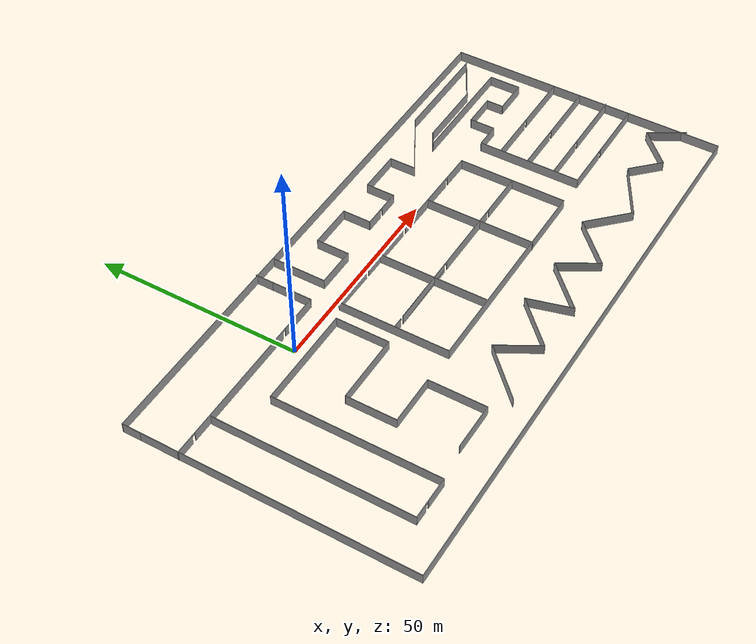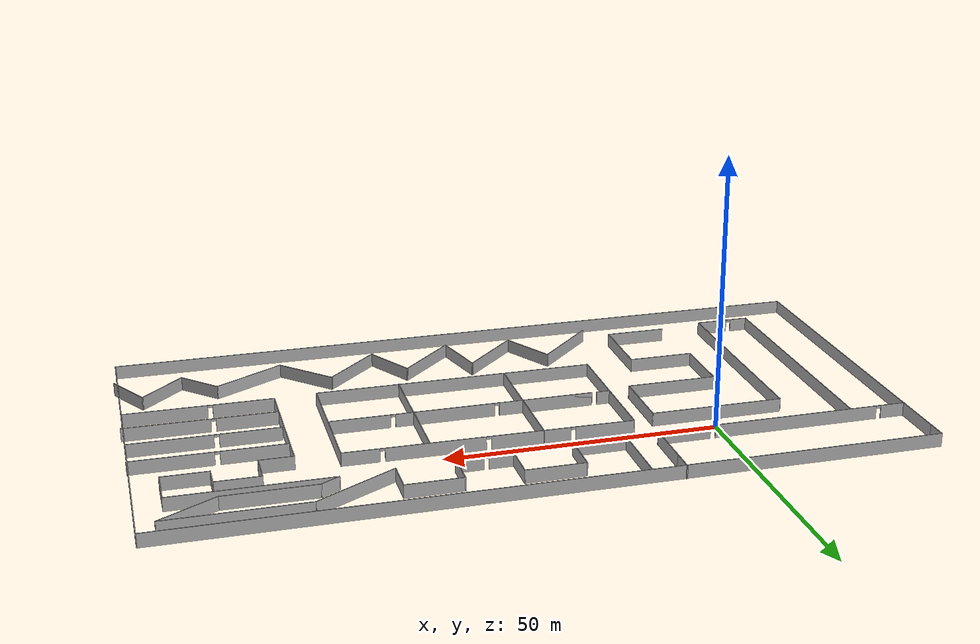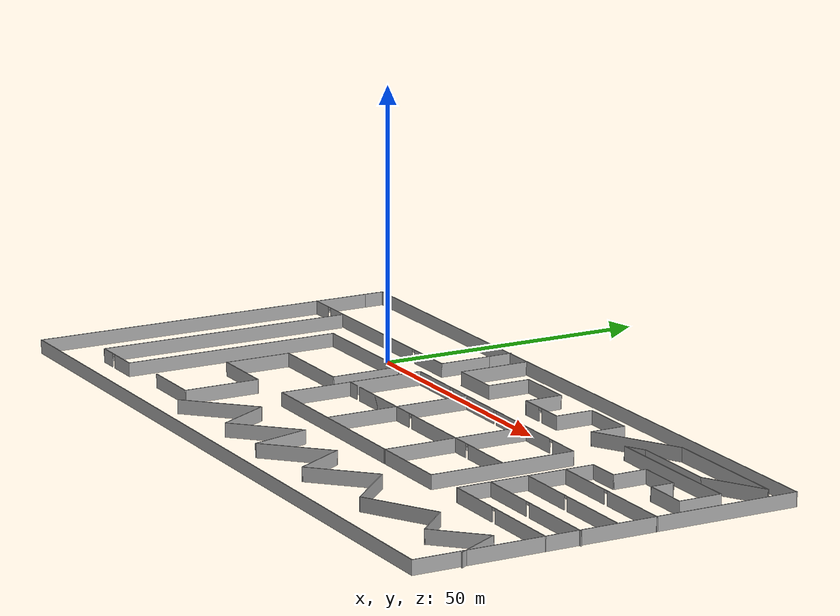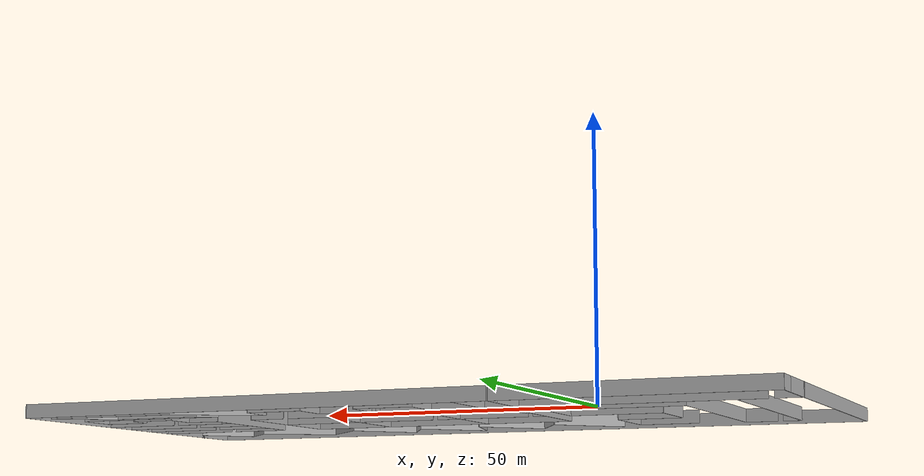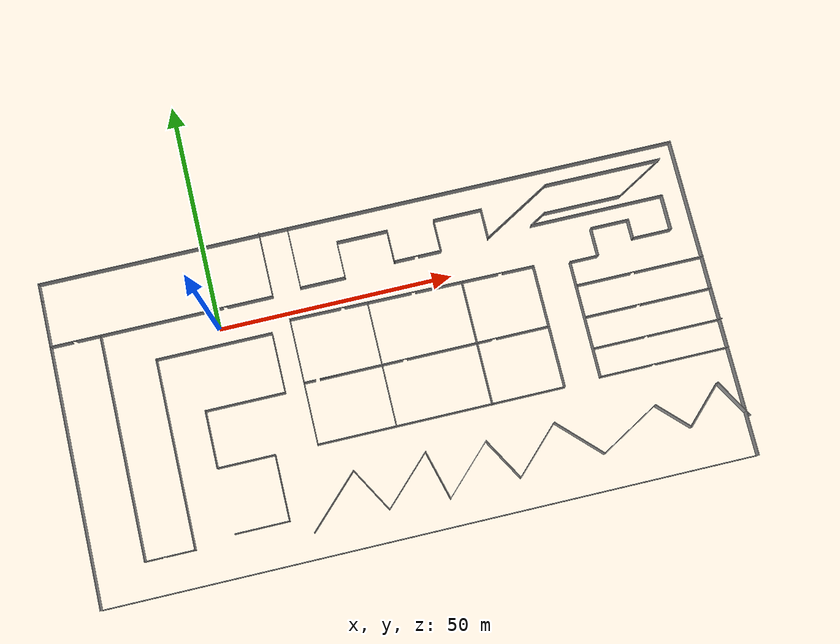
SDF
<?xml version='1.0'?>
<sdf version='1.6'>
  <model name='LS401big'>
    <pose frame=''>33.9459 -16.6165 0 0 -0 0</pose>
    <link name='Wall_0'>
      <collision name='Wall_0_Collision'>
        <geometry>
          <box>
            <size>65.25 0.15 2.5</size>
          </box>
        </geometry>
        <pose frame=''>0 0 1.25 0 -0 0</pose>
      </collision>
      <visual name='Wall_0_Visual'>
        <pose frame=''>0 0 1.25 0 -0 0</pose>
        <geometry>
          <box>
            <size>65.25 0.15 2.5</size>
          </box>
        </geometry>
        <material>
          <script>
            <uri>file://media/materials/scripts/gazebo.material</uri>
            <name>Gazebo/Grey</name>
          </script>
          <ambient>1 1 1 1</ambient>
        </material>
      </visual>
      <pose frame=''>-68.8085 -2.01776 0 0 0 -1.5708</pose>
    </link>
    <link name='Wall_1'>
      <collision name='Wall_1_Collision'>
        <geometry>
          <box>
            <size>137.25 0.15 2.5</size>
          </box>
        </geometry>
        <pose frame=''>0 0 1.25 0 -0 0</pose>
      </collision>
      <visual name='Wall_1_Visual'>
        <pose frame=''>0 0 1.25 0 -0 0</pose>
        <geometry>
          <box>
            <size>137.25 0.15 2.5</size>
          </box>
        </geometry>
        <material>
          <script>
            <uri>file://media/materials/scripts/gazebo.material</uri>
            <name>Gazebo/Grey</name>
          </script>
          <ambient>1 1 1 1</ambient>
        </material>
      </visual>
      <pose frame=''>-0.258518 -34.5678 0 0 -0 0</pose>
    </link>
    <link name='Wall_10'>
      <collision name='Wall_10_Collision'>
        <geometry>
          <box>
            <size>27 0.15 2.5</size>
          </box>
        </geometry>
        <pose frame=''>0 0 1.25 0 -0 0</pose>
      </collision>
      <visual name='Wall_10_Visual'>
        <pose frame=''>0 0 1.25 0 -0 0</pose>
        <geometry>
          <box>
            <size>27 0.15 2.5</size>
          </box>
        </geometry>
        <material>
          <script>
            <uri>file://media/materials/scripts/gazebo.material</uri>
            <name>Gazebo/Grey</name>
          </script>
          <ambient>1 1 1 1</ambient>
        </material>
      </visual>
      <pose frame=''>-19.1213 1.56513 0 0 0 -1.5708</pose>
    </link>
    <link name='Wall_11'>
      <collision name='Wall_11_Collision'>
        <geometry>
          <box>
            <size>52.5 0.15 2.5</size>
          </box>
        </geometry>
        <pose frame=''>0 0 1.25 0 -0 0</pose>
      </collision>
      <visual name='Wall_11_Visual'>
        <pose frame=''>0 0 1.25 0 -0 0</pose>
        <geometry>
          <box>
            <size>52.5 0.15 2.5</size>
          </box>
        </geometry>
        <material>
          <script>
            <uri>file://media/materials/scripts/gazebo.material</uri>
            <name>Gazebo/Grey</name>
          </script>
          <ambient>1 1 1 1</ambient>
        </material>
      </visual>
      <pose frame=''>7.05367 -11.8599 0 0 -0 0</pose>
    </link>
    <link name='Wall_12'>
      <collision name='Wall_12_Collision'>
        <geometry>
          <box>
            <size>26.5 0.15 2.5</size>
          </box>
        </geometry>
        <pose frame=''>0 0 1.25 0 -0 0</pose>
      </collision>
      <visual name='Wall_12_Visual'>
        <pose frame=''>0 0 1.25 0 -0 0</pose>
        <geometry>
          <box>
            <size>26.5 0.15 2.5</size>
          </box>
        </geometry>
        <material>
          <script>
            <uri>file://media/materials/scripts/gazebo.material</uri>
            <name>Gazebo/Grey</name>
          </script>
          <ambient>1 1 1 1</ambient>
        </material>
      </visual>
      <pose frame=''>33.2287 1.31513 0 0 -0 1.5708</pose>
    </link>
    <link name='Wall_13'>
      <pose frame=''>7.05367 14.7401 0 0 -0 3.13204</pose>
      <visual name='Wall_13_Visual_0'>
        <pose frame=''>-22.861 0 1.25 0 -0 0</pose>
        <geometry>
          <box>
            <size>6.78036 0.15 2.5</size>
          </box>
        </geometry>
        <material>
          <script>
            <uri>file://media/materials/scripts/gazebo.material</uri>
            <name>Gazebo/Grey</name>
          </script>
          <ambient>1 1 1 1</ambient>
        </material>
      </visual>
      <collision name='Wall_13_Collision_0'>
        <geometry>
          <box>
            <size>6.78036 0.15 2.5</size>
          </box>
        </geometry>
        <pose frame=''>-22.861 0 1.25 0 -0 0</pose>
      </collision>
      <visual name='Wall_13_Visual_1'>
        <pose frame=''>-9.6772 0 1.25 0 -0 0</pose>
        <geometry>
          <box>
            <size>17.7873 0.15 2.5</size>
          </box>
        </geometry>
        <material>
          <script>
            <uri>file://media/materials/scripts/gazebo.material</uri>
            <name>Gazebo/Grey</name>
          </script>
          <ambient>1 1 1 1</ambient>
        </material>
      </visual>
      <collision name='Wall_13_Collision_1'>
        <geometry>
          <box>
            <size>17.7873 0.15 2.5</size>
          </box>
        </geometry>
        <pose frame=''>-9.6772 0 1.25 0 -0 0</pose>
      </collision>
      <visual name='Wall_13_Visual_2'>
        <pose frame=''>7.27817 0 1.25 0 -0 0</pose>
        <geometry>
          <box>
            <size>14.3235 0.15 2.5</size>
          </box>
        </geometry>
        <material>
          <script>
            <uri>file://media/materials/scripts/gazebo.material</uri>
            <name>Gazebo/Grey</name>
          </script>
          <ambient>1 1 1 1</ambient>
        </material>
      </visual>
      <collision name='Wall_13_Collision_2'>
        <geometry>
          <box>
            <size>14.3235 0.15 2.5</size>
          </box>
        </geometry>
        <pose frame=''>7.27817 0 1.25 0 -0 0</pose>
      </collision>
      <visual name='Wall_13_Visual_3'>
        <pose frame=''>20.7956 0 1.25 0 -0 0</pose>
        <geometry>
          <box>
            <size>10.9113 0.15 2.5</size>
          </box>
        </geometry>
        <material>
          <script>
            <uri>file://media/materials/scripts/gazebo.material</uri>
            <name>Gazebo/Grey</name>
          </script>
          <ambient>1 1 1 1</ambient>
        </material>
      </visual>
      <collision name='Wall_13_Collision_3'>
        <geometry>
          <box>
            <size>10.9113 0.15 2.5</size>
          </box>
        </geometry>
        <pose frame=''>20.7956 0 1.25 0 -0 0</pose>
      </collision>
      <visual name='Wall_13_Visual_4'>
        <pose frame=''>-19.0208 0 2.25 0 -0 0</pose>
        <geometry>
          <box>
            <size>0.9 0.15 0.5</size>
          </box>
        </geometry>
        <material>
          <script>
            <uri>file://media/materials/scripts/gazebo.material</uri>
            <name>Gazebo/Grey</name>
          </script>
          <ambient>1 1 1 1</ambient>
        </material>
      </visual>
      <collision name='Wall_13_Collision_4'>
        <geometry>
          <box>
            <size>0.9 0.15 0.5</size>
          </box>
        </geometry>
        <pose frame=''>-19.0208 0 2.25 0 -0 0</pose>
      </collision>
      <visual name='Wall_13_Visual_5'>
        <pose frame=''>-0.333565 0 2.25 0 -0 0</pose>
        <geometry>
          <box>
            <size>0.9 0.15 0.5</size>
          </box>
        </geometry>
        <material>
          <script>
            <uri>file://media/materials/scripts/gazebo.material</uri>
            <name>Gazebo/Grey</name>
          </script>
          <ambient>1 1 1 1</ambient>
        </material>
      </visual>
      <collision name='Wall_13_Collision_5'>
        <geometry>
          <box>
            <size>0.9 0.15 0.5</size>
          </box>
        </geometry>
        <pose frame=''>-0.333565 0 2.25 0 -0 0</pose>
      </collision>
      <visual name='Wall_13_Visual_6'>
        <pose frame=''>14.8899 0 2.25 0 -0 0</pose>
        <geometry>
          <box>
            <size>0.9 0.15 0.5</size>
          </box>
        </geometry>
        <material>
          <script>
            <uri>file://media/materials/scripts/gazebo.material</uri>
            <name>Gazebo/Grey</name>
          </script>
          <ambient>1 1 1 1</ambient>
        </material>
      </visual>
      <collision name='Wall_13_Collision_6'>
        <geometry>
          <box>
            <size>0.9 0.15 0.5</size>
          </box>
        </geometry>
        <pose frame=''>14.8899 0 2.25 0 -0 0</pose>
      </collision>
    </link>
    <link name='Wall_15'>
      <collision name='Wall_15_Collision'>
        <geometry>
          <box>
            <size>26.75 0.15 2.5</size>
          </box>
        </geometry>
        <pose frame=''>0 0 1.25 0 -0 0</pose>
      </collision>
      <visual name='Wall_15_Visual'>
        <pose frame=''>0 0 1.25 0 -0 0</pose>
        <geometry>
          <box>
            <size>26.75 0.15 2.5</size>
          </box>
        </geometry>
        <material>
          <script>
            <uri>file://media/materials/scripts/gazebo.material</uri>
            <name>Gazebo/Grey</name>
          </script>
          <ambient>1 1 1 1</ambient>
        </material>
      </visual>
      <pose frame=''>-2.51414 1.58029 0 0 0 -1.5708</pose>
    </link>
    <link name='Wall_17'>
      <collision name='Wall_17_Collision'>
        <geometry>
          <box>
            <size>26.75 0.15 2.5</size>
          </box>
        </geometry>
        <pose frame=''>0 0 1.25 0 -0 0</pose>
      </collision>
      <visual name='Wall_17_Visual'>
        <pose frame=''>0 0 1.25 0 -0 0</pose>
        <geometry>
          <box>
            <size>26.75 0.15 2.5</size>
          </box>
        </geometry>
        <material>
          <script>
            <uri>file://media/materials/scripts/gazebo.material</uri>
            <name>Gazebo/Grey</name>
          </script>
          <ambient>1 1 1 1</ambient>
        </material>
      </visual>
      <pose frame=''>17.7816 1.33278 0 0 0 -1.5708</pose>
    </link>
    <link name='Wall_19'>
      <pose frame=''>6.95275 1.26729 0 0 -0 0</pose>
      <visual name='Wall_19_Visual_0'>
        <pose frame=''>-24.8554 0 1.25 0 -0 0</pose>
        <geometry>
          <box>
            <size>2.53914 0.15 2.5</size>
          </box>
        </geometry>
        <material>
          <script>
            <uri>file://media/materials/scripts/gazebo.material</uri>
            <name>Gazebo/Grey</name>
          </script>
          <ambient>1 1 1 1</ambient>
        </material>
      </visual>
      <collision name='Wall_19_Collision_0'>
        <geometry>
          <box>
            <size>2.53914 0.15 2.5</size>
          </box>
        </geometry>
        <pose frame=''>-24.8554 0 1.25 0 -0 0</pose>
      </collision>
      <visual name='Wall_19_Visual_1'>
        <pose frame=''>-13.8521 0 1.25 0 -0 0</pose>
        <geometry>
          <box>
            <size>17.6675 0.15 2.5</size>
          </box>
        </geometry>
        <material>
          <script>
            <uri>file://media/materials/scripts/gazebo.material</uri>
            <name>Gazebo/Grey</name>
          </script>
          <ambient>1 1 1 1</ambient>
        </material>
      </visual>
      <collision name='Wall_19_Collision_1'>
        <geometry>
          <box>
            <size>17.6675 0.15 2.5</size>
          </box>
        </geometry>
        <pose frame=''>-13.8521 0 1.25 0 -0 0</pose>
      </collision>
      <visual name='Wall_19_Visual_2'>
        <pose frame=''>-13.8022 0 1.25 0 -0 0</pose>
        <geometry>
          <box>
            <size>17.5676 0.15 2.5</size>
          </box>
        </geometry>
        <material>
          <script>
            <uri>file://media/materials/scripts/gazebo.material</uri>
            <name>Gazebo/Grey</name>
          </script>
          <ambient>1 1 1 1</ambient>
        </material>
      </visual>
      <collision name='Wall_19_Collision_2'>
        <geometry>
          <box>
            <size>17.5676 0.15 2.5</size>
          </box>
        </geometry>
        <pose frame=''>-13.8022 0 1.25 0 -0 0</pose>
      </collision>
      <visual name='Wall_19_Visual_3'>
        <pose frame=''>5.00668 0 1.25 0 -0 0</pose>
        <geometry>
          <box>
            <size>18.2501 0.15 2.5</size>
          </box>
        </geometry>
        <material>
          <script>
            <uri>file://media/materials/scripts/gazebo.material</uri>
            <name>Gazebo/Grey</name>
          </script>
          <ambient>1 1 1 1</ambient>
        </material>
      </visual>
      <collision name='Wall_19_Collision_3'>
        <geometry>
          <box>
            <size>18.2501 0.15 2.5</size>
          </box>
        </geometry>
        <pose frame=''>5.00668 0 1.25 0 -0 0</pose>
      </collision>
      <visual name='Wall_19_Visual_4'>
        <pose frame=''>20.5784 0 1.25 0 -0 0</pose>
        <geometry>
          <box>
            <size>11.0933 0.15 2.5</size>
          </box>
        </geometry>
        <material>
          <script>
            <uri>file://media/materials/scripts/gazebo.material</uri>
            <name>Gazebo/Grey</name>
          </script>
          <ambient>1 1 1 1</ambient>
        </material>
      </visual>
      <collision name='Wall_19_Collision_4'>
        <geometry>
          <box>
            <size>11.0933 0.15 2.5</size>
          </box>
        </geometry>
        <pose frame=''>20.5784 0 1.25 0 -0 0</pose>
      </collision>
      <visual name='Wall_19_Visual_5'>
        <pose frame=''>-23.5359 0 2.25 0 -0 0</pose>
        <geometry>
          <box>
            <size>0.099876 0.15 0.5</size>
          </box>
        </geometry>
        <material>
          <script>
            <uri>file://media/materials/scripts/gazebo.material</uri>
            <name>Gazebo/Grey</name>
          </script>
          <ambient>1 1 1 1</ambient>
        </material>
      </visual>
      <collision name='Wall_19_Collision_5'>
        <geometry>
          <box>
            <size>0.099876 0.15 0.5</size>
          </box>
        </geometry>
        <pose frame=''>-23.5359 0 2.25 0 -0 0</pose>
      </collision>
      <visual name='Wall_19_Visual_6'>
        <pose frame=''>-4.56839 0 2.25 0 -0 0</pose>
        <geometry>
          <box>
            <size>0.9 0.15 0.5</size>
          </box>
        </geometry>
        <material>
          <script>
            <uri>file://media/materials/scripts/gazebo.material</uri>
            <name>Gazebo/Grey</name>
          </script>
          <ambient>1 1 1 1</ambient>
        </material>
      </visual>
      <collision name='Wall_19_Collision_6'>
        <geometry>
          <box>
            <size>0.9 0.15 0.5</size>
          </box>
        </geometry>
        <pose frame=''>-4.56839 0 2.25 0 -0 0</pose>
      </collision>
      <visual name='Wall_19_Visual_7'>
        <pose frame=''>-4.56839 0 2.25 0 -0 0</pose>
        <geometry>
          <box>
            <size>0.9 0.15 0.5</size>
          </box>
        </geometry>
        <material>
          <script>
            <uri>file://media/materials/scripts/gazebo.material</uri>
            <name>Gazebo/Grey</name>
          </script>
          <ambient>1 1 1 1</ambient>
        </material>
      </visual>
      <collision name='Wall_19_Collision_7'>
        <geometry>
          <box>
            <size>0.9 0.15 0.5</size>
          </box>
        </geometry>
        <pose frame=''>-4.56839 0 2.25 0 -0 0</pose>
      </collision>
      <visual name='Wall_19_Visual_8'>
        <pose frame=''>14.5817 0 2.25 0 -0 0</pose>
        <geometry>
          <box>
            <size>0.9 0.15 0.5</size>
          </box>
        </geometry>
        <material>
          <script>
            <uri>file://media/materials/scripts/gazebo.material</uri>
            <name>Gazebo/Grey</name>
          </script>
          <ambient>1 1 1 1</ambient>
        </material>
      </visual>
      <collision name='Wall_19_Collision_8'>
        <geometry>
          <box>
            <size>0.9 0.15 0.5</size>
          </box>
        </geometry>
        <pose frame=''>14.5817 0 2.25 0 -0 0</pose>
      </collision>
    </link>
    <link name='Wall_2'>
      <collision name='Wall_2_Collision'>
        <geometry>
          <box>
            <size>69 0.15 2.5</size>
          </box>
        </geometry>
        <pose frame=''>0 0 1.25 0 -0 0</pose>
      </collision>
      <visual name='Wall_2_Visual'>
        <pose frame=''>0 0 1.25 0 -0 0</pose>
        <geometry>
          <box>
            <size>69 0.15 2.5</size>
          </box>
        </geometry>
        <material>
          <script>
            <uri>file://media/materials/scripts/gazebo.material</uri>
            <name>Gazebo/Grey</name>
          </script>
          <ambient>1 1 1 1</ambient>
        </material>
      </visual>
      <pose frame=''>68.2915 -0.14276 0 0 -0 1.5708</pose>
    </link>
    <link name='Wall_21'>
      <collision name='Wall_21_Collision'>
        <geometry>
          <box>
            <size>47.5 0.15 2.5</size>
          </box>
        </geometry>
        <pose frame=''>0 0 1.25 0 -0 0</pose>
      </collision>
      <visual name='Wall_21_Visual'>
        <pose frame=''>0 0 1.25 0 -0 0</pose>
        <geometry>
          <box>
            <size>47.5 0.15 2.5</size>
          </box>
        </geometry>
        <material>
          <script>
            <uri>file://media/materials/scripts/gazebo.material</uri>
            <name>Gazebo/Grey</name>
          </script>
          <ambient>1 1 1 1</ambient>
        </material>
      </visual>
      <pose frame=''>-58.2927 -3.4002 0 0 0 -1.5708</pose>
    </link>
    <link name='Wall_22'>
      <pose frame=''>-53.1177 -27.0752 0 0 -0 0</pose>
      <visual name='Wall_22_Visual_0'>
        <pose frame=''>-3.50436 0 1.25 0 -0 0</pose>
        <geometry>
          <box>
            <size>3.49127 0.15 2.5</size>
          </box>
        </geometry>
        <material>
          <script>
            <uri>file://media/materials/scripts/gazebo.material</uri>
            <name>Gazebo/Grey</name>
          </script>
          <ambient>1 1 1 1</ambient>
        </material>
      </visual>
      <collision name='Wall_22_Collision_0'>
        <geometry>
          <box>
            <size>3.49127 0.15 2.5</size>
          </box>
        </geometry>
        <pose frame=''>-3.50436 0 1.25 0 -0 0</pose>
      </collision>
      <visual name='Wall_22_Visual_1'>
        <pose frame=''>2.19563 0 1.25 0 -0 0</pose>
        <geometry>
          <box>
            <size>6.10873 0.15 2.5</size>
          </box>
        </geometry>
        <material>
          <script>
            <uri>file://media/materials/scripts/gazebo.material</uri>
            <name>Gazebo/Grey</name>
          </script>
          <ambient>1 1 1 1</ambient>
        </material>
      </visual>
      <collision name='Wall_22_Collision_1'>
        <geometry>
          <box>
            <size>6.10873 0.15 2.5</size>
          </box>
        </geometry>
        <pose frame=''>2.19563 0 1.25 0 -0 0</pose>
      </collision>
      <visual name='Wall_22_Visual_2'>
        <pose frame=''>-1.30873 0 2.25 0 -0 0</pose>
        <geometry>
          <box>
            <size>0.9 0.15 0.5</size>
          </box>
        </geometry>
        <material>
          <script>
            <uri>file://media/materials/scripts/gazebo.material</uri>
            <name>Gazebo/Grey</name>
          </script>
          <ambient>1 1 1 1</ambient>
        </material>
      </visual>
      <collision name='Wall_22_Collision_2'>
        <geometry>
          <box>
            <size>0.9 0.15 0.5</size>
          </box>
        </geometry>
        <pose frame=''>-1.30873 0 2.25 0 -0 0</pose>
      </collision>
    </link>
    <link name='Wall_23'>
      <collision name='Wall_23_Collision'>
        <geometry>
          <box>
            <size>40.25 0.15 2.5</size>
          </box>
        </geometry>
        <pose frame=''>0 0 1.25 0 -0 0</pose>
      </collision>
      <visual name='Wall_23_Visual'>
        <pose frame=''>0 0 1.25 0 -0 0</pose>
        <geometry>
          <box>
            <size>40.25 0.15 2.5</size>
          </box>
        </geometry>
        <material>
          <script>
            <uri>file://media/materials/scripts/gazebo.material</uri>
            <name>Gazebo/Grey</name>
          </script>
          <ambient>1 1 1 1</ambient>
        </material>
      </visual>
      <pose frame=''>-47.9427 -7.0252 0 0 -0 1.5708</pose>
    </link>
    <link name='Wall_24'>
      <collision name='Wall_24_Collision'>
        <geometry>
          <box>
            <size>24.75 0.15 2.5</size>
          </box>
        </geometry>
        <pose frame=''>0 0 1.25 0 -0 0</pose>
      </collision>
      <visual name='Wall_24_Visual'>
        <pose frame=''>0 0 1.25 0 -0 0</pose>
        <geometry>
          <box>
            <size>24.75 0.15 2.5</size>
          </box>
        </geometry>
        <material>
          <script>
            <uri>file://media/materials/scripts/gazebo.material</uri>
            <name>Gazebo/Grey</name>
          </script>
          <ambient>1 1 1 1</ambient>
        </material>
      </visual>
      <pose frame=''>-35.6427 13.0248 0 0 -0 0</pose>
    </link>
    <link name='Wall_25'>
      <collision name='Wall_25_Collision'>
        <geometry>
          <box>
            <size>13 0.15 2.5</size>
          </box>
        </geometry>
        <pose frame=''>0 0 1.25 0 -0 0</pose>
      </collision>
      <visual name='Wall_25_Visual'>
        <pose frame=''>0 0 1.25 0 -0 0</pose>
        <geometry>
          <box>
            <size>13 0.15 2.5</size>
          </box>
        </geometry>
        <material>
          <script>
            <uri>file://media/materials/scripts/gazebo.material</uri>
            <name>Gazebo/Grey</name>
          </script>
          <ambient>1 1 1 1</ambient>
        </material>
      </visual>
      <pose frame=''>-23.3427 6.5998 0 0 0 -1.5708</pose>
    </link>
    <link name='Wall_26'>
      <collision name='Wall_26_Collision'>
        <geometry>
          <box>
            <size>17 0.15 2.5</size>
          </box>
        </geometry>
        <pose frame=''>0 0 1.25 0 -0 0</pose>
      </collision>
      <visual name='Wall_26_Visual'>
        <pose frame=''>0 0 1.25 0 -0 0</pose>
        <geometry>
          <box>
            <size>17 0.15 2.5</size>
          </box>
        </geometry>
        <material>
          <script>
            <uri>file://media/materials/scripts/gazebo.material</uri>
            <name>Gazebo/Grey</name>
          </script>
          <ambient>1 1 1 1</ambient>
        </material>
      </visual>
      <pose frame=''>-31.7677 0.174802 0 0 -0 3.14159</pose>
    </link>
    <link name='Wall_27'>
      <collision name='Wall_27_Collision'>
        <geometry>
          <box>
            <size>12.25 0.15 2.5</size>
          </box>
        </geometry>
        <pose frame=''>0 0 1.25 0 -0 0</pose>
      </collision>
      <visual name='Wall_27_Visual'>
        <pose frame=''>0 0 1.25 0 -0 0</pose>
        <geometry>
          <box>
            <size>12.25 0.15 2.5</size>
          </box>
        </geometry>
        <material>
          <script>
            <uri>file://media/materials/scripts/gazebo.material</uri>
            <name>Gazebo/Grey</name>
          </script>
          <ambient>1 1 1 1</ambient>
        </material>
      </visual>
      <pose frame=''>-40.1927 -5.8752 0 0 0 -1.5708</pose>
    </link>
    <link name='Wall_28'>
      <collision name='Wall_28_Collision'>
        <geometry>
          <box>
            <size>12.25 0.15 2.5</size>
          </box>
        </geometry>
        <pose frame=''>0 0 1.25 0 -0 0</pose>
      </collision>
      <visual name='Wall_28_Visual'>
        <pose frame=''>0 0 1.25 0 -0 0</pose>
        <geometry>
          <box>
            <size>12.25 0.15 2.5</size>
          </box>
        </geometry>
        <material>
          <script>
            <uri>file://media/materials/scripts/gazebo.material</uri>
            <name>Gazebo/Grey</name>
          </script>
          <ambient>1 1 1 1</ambient>
        </material>
      </visual>
      <pose frame=''>-34.1427 -11.9252 0 0 -0 0</pose>
    </link>
    <link name='Wall_29'>
      <collision name='Wall_29_Collision'>
        <geometry>
          <box>
            <size>14 0.15 2.5</size>
          </box>
        </geometry>
        <pose frame=''>0 0 1.25 0 -0 0</pose>
      </collision>
      <visual name='Wall_29_Visual'>
        <pose frame=''>0 0 1.25 0 -0 0</pose>
        <geometry>
          <box>
            <size>14 0.15 2.5</size>
          </box>
        </geometry>
        <material>
          <script>
            <uri>file://media/materials/scripts/gazebo.material</uri>
            <name>Gazebo/Grey</name>
          </script>
          <ambient>1 1 1 1</ambient>
        </material>
      </visual>
      <pose frame=''>-28.0927 -18.8502 0 0 0 -1.5708</pose>
    </link>
    <link name='Wall_3'>
      <collision name='Wall_3_Collision'>
        <geometry>
          <box>
            <size>137.25 0.15 2.5</size>
          </box>
        </geometry>
        <pose frame=''>0 0 1.25 0 -0 0</pose>
      </collision>
      <visual name='Wall_3_Visual'>
        <pose frame=''>0 0 1.25 0 -0 0</pose>
        <geometry>
          <box>
            <size>137.25 0.15 2.5</size>
          </box>
        </geometry>
        <material>
          <script>
            <uri>file://media/materials/scripts/gazebo.material</uri>
            <name>Gazebo/Grey</name>
          </script>
          <ambient>1 1 1 1</ambient>
        </material>
      </visual>
      <pose frame=''>-0.258518 34.2822 0 0 -0 3.14159</pose>
    </link>
    <link name='Wall_30'>
      <collision name='Wall_30_Collision'>
        <geometry>
          <box>
            <size>11.5 0.15 2.5</size>
          </box>
        </geometry>
        <pose frame=''>0 0 1.25 0 -0 0</pose>
      </collision>
      <visual name='Wall_30_Visual'>
        <pose frame=''>0 0 1.25 0 -0 0</pose>
        <geometry>
          <box>
            <size>11.5 0.15 2.5</size>
          </box>
        </geometry>
        <material>
          <script>
            <uri>file://media/materials/scripts/gazebo.material</uri>
            <name>Gazebo/Grey</name>
          </script>
          <ambient>1 1 1 1</ambient>
        </material>
      </visual>
      <pose frame=''>-33.7677 -25.7752 0 0 -0 3.14159</pose>
    </link>
    <link name='Wall_32'>
      <collision name='Wall_32_Collision'>
        <geometry>
          <box>
            <size>13 0.15 2.5</size>
          </box>
        </geometry>
        <pose frame=''>0 0 1.25 0 -0 0</pose>
      </collision>
      <visual name='Wall_32_Visual'>
        <pose frame=''>0 0 1.25 0 -0 0</pose>
        <geometry>
          <box>
            <size>13 0.15 2.5</size>
          </box>
        </geometry>
        <material>
          <script>
            <uri>file://media/materials/scripts/gazebo.material</uri>
            <name>Gazebo/Grey</name>
          </script>
          <ambient>1 1 1 1</ambient>
        </material>
      </visual>
      <pose frame=''>-15.4741 27.548 0 0 0 -1.5708</pose>
    </link>
    <link name='Wall_33'>
      <collision name='Wall_33_Collision'>
        <geometry>
          <box>
            <size>9.75 0.15 2.5</size>
          </box>
        </geometry>
        <pose frame=''>0 0 1.25 0 -0 0</pose>
      </collision>
      <visual name='Wall_33_Visual'>
        <pose frame=''>0 0 1.25 0 -0 0</pose>
        <geometry>
          <box>
            <size>9.75 0.15 2.5</size>
          </box>
        </geometry>
        <material>
          <script>
            <uri>file://media/materials/scripts/gazebo.material</uri>
            <name>Gazebo/Grey</name>
          </script>
          <ambient>1 1 1 1</ambient>
        </material>
      </visual>
      <pose frame=''>-10.6741 21.123 0 0 -0 0</pose>
    </link>
    <link name='Wall_34'>
      <collision name='Wall_34_Collision'>
        <geometry>
          <box>
            <size>8 0.15 2.5</size>
          </box>
        </geometry>
        <pose frame=''>0 0 1.25 0 -0 0</pose>
      </collision>
      <visual name='Wall_34_Visual'>
        <pose frame=''>0 0 1.25 0 -0 0</pose>
        <geometry>
          <box>
            <size>8 0.15 2.5</size>
          </box>
        </geometry>
        <material>
          <script>
            <uri>file://media/materials/scripts/gazebo.material</uri>
            <name>Gazebo/Grey</name>
          </script>
          <ambient>1 1 1 1</ambient>
        </material>
      </visual>
      <pose frame=''>-5.87405 25.048 0 0 -0 1.5708</pose>
    </link>
    <link name='Wall_35'>
      <collision name='Wall_35_Collision'>
        <geometry>
          <box>
            <size>11 0.15 2.5</size>
          </box>
        </geometry>
        <pose frame=''>0 0 1.25 0 -0 0</pose>
      </collision>
      <visual name='Wall_35_Visual'>
        <pose frame=''>0 0 1.25 0 -0 0</pose>
        <geometry>
          <box>
            <size>11 0.15 2.5</size>
          </box>
        </geometry>
        <material>
          <script>
            <uri>file://media/materials/scripts/gazebo.material</uri>
            <name>Gazebo/Grey</name>
          </script>
          <ambient>1 1 1 1</ambient>
        </material>
      </visual>
      <pose frame=''>-0.449051 28.973 0 0 -0 0</pose>
    </link>
    <link name='Wall_36'>
      <collision name='Wall_36_Collision'>
        <geometry>
          <box>
            <size>7 0.15 2.5</size>
          </box>
        </geometry>
        <pose frame=''>0 0 1.25 0 -0 0</pose>
      </collision>
      <visual name='Wall_36_Visual'>
        <pose frame=''>0 0 1.25 0 -0 0</pose>
        <geometry>
          <box>
            <size>7 0.15 2.5</size>
          </box>
        </geometry>
        <material>
          <script>
            <uri>file://media/materials/scripts/gazebo.material</uri>
            <name>Gazebo/Grey</name>
          </script>
          <ambient>1 1 1 1</ambient>
        </material>
      </visual>
      <pose frame=''>4.97595 25.548 0 0 0 -1.5708</pose>
    </link>
    <link name='Wall_37'>
      <pose frame=''>10.0259 22.123 0 0 -0 0</pose>
      <visual name='Wall_37_Visual_0'>
        <pose frame=''>-2.91875 0 1.25 0 -0 0</pose>
        <geometry>
          <box>
            <size>4.4125 0.15 2.5</size>
          </box>
        </geometry>
        <material>
          <script>
            <uri>file://media/materials/scripts/gazebo.material</uri>
            <name>Gazebo/Grey</name>
          </script>
          <ambient>1 1 1 1</ambient>
        </material>
      </visual>
      <collision name='Wall_37_Collision_0'>
        <geometry>
          <box>
            <size>4.4125 0.15 2.5</size>
          </box>
        </geometry>
        <pose frame=''>-2.91875 0 1.25 0 -0 0</pose>
      </collision>
      <visual name='Wall_37_Visual_1'>
        <pose frame=''>2.65625 0 1.25 0 -0 0</pose>
        <geometry>
          <box>
            <size>4.9375 0.15 2.5</size>
          </box>
        </geometry>
        <material>
          <script>
            <uri>file://media/materials/scripts/gazebo.material</uri>
            <name>Gazebo/Grey</name>
          </script>
          <ambient>1 1 1 1</ambient>
        </material>
      </visual>
      <collision name='Wall_37_Collision_1'>
        <geometry>
          <box>
            <size>4.9375 0.15 2.5</size>
          </box>
        </geometry>
        <pose frame=''>2.65625 0 1.25 0 -0 0</pose>
      </collision>
      <visual name='Wall_37_Visual_2'>
        <pose frame=''>-0.262497 0 2.25 0 -0 0</pose>
        <geometry>
          <box>
            <size>0.9 0.15 0.5</size>
          </box>
        </geometry>
        <material>
          <script>
            <uri>file://media/materials/scripts/gazebo.material</uri>
            <name>Gazebo/Grey</name>
          </script>
          <ambient>1 1 1 1</ambient>
        </material>
      </visual>
      <collision name='Wall_37_Collision_2'>
        <geometry>
          <box>
            <size>0.9 0.15 0.5</size>
          </box>
        </geometry>
        <pose frame=''>-0.262497 0 2.25 0 -0 0</pose>
      </collision>
    </link>
    <link name='Wall_38'>
      <collision name='Wall_38_Collision'>
        <geometry>
          <box>
            <size>7 0.15 2.5</size>
          </box>
        </geometry>
        <pose frame=''>0 0 1.25 0 -0 0</pose>
      </collision>
      <visual name='Wall_38_Visual'>
        <pose frame=''>0 0 1.25 0 -0 0</pose>
        <geometry>
          <box>
            <size>7 0.15 2.5</size>
          </box>
        </geometry>
        <material>
          <script>
            <uri>file://media/materials/scripts/gazebo.material</uri>
            <name>Gazebo/Grey</name>
          </script>
          <ambient>1 1 1 1</ambient>
        </material>
      </visual>
      <pose frame=''>15.0759 25.548 0 0 -0 1.5708</pose>
    </link>
    <link name='Wall_39'>
      <collision name='Wall_39_Collision'>
        <geometry>
          <box>
            <size>10.5 0.15 2.5</size>
          </box>
        </geometry>
        <pose frame=''>0 0 1.25 0 -0 0</pose>
      </collision>
      <visual name='Wall_39_Visual'>
        <pose frame=''>0 0 1.25 0 -0 0</pose>
        <geometry>
          <box>
            <size>10.5 0.15 2.5</size>
          </box>
        </geometry>
        <material>
          <script>
            <uri>file://media/materials/scripts/gazebo.material</uri>
            <name>Gazebo/Grey</name>
          </script>
          <ambient>1 1 1 1</ambient>
        </material>
      </visual>
      <pose frame=''>20.2509 28.973 0 0 -0 0</pose>
    </link>
    <link name='Wall_4'>
      <collision name='Wall_4_Collision'>
        <geometry>
          <box>
            <size>4.5 0.15 2.5</size>
          </box>
        </geometry>
        <pose frame=''>0 0 1.25 0 -0 0</pose>
      </collision>
      <visual name='Wall_4_Visual'>
        <pose frame=''>0 0 1.25 0 -0 0</pose>
        <geometry>
          <box>
            <size>4.5 0.15 2.5</size>
          </box>
        </geometry>
        <material>
          <script>
            <uri>file://media/materials/scripts/gazebo.material</uri>
            <name>Gazebo/Grey</name>
          </script>
          <ambient>1 1 1 1</ambient>
        </material>
      </visual>
      <pose frame=''>-68.8085 32.1072 0 0 0 -1.5708</pose>
    </link>
    <link name='Wall_40'>
      <collision name='Wall_40_Collision'>
        <geometry>
          <box>
            <size>6.5 0.15 2.5</size>
          </box>
        </geometry>
        <pose frame=''>0 0 1.25 0 -0 0</pose>
      </collision>
      <visual name='Wall_40_Visual'>
        <pose frame=''>0 0 1.25 0 -0 0</pose>
        <geometry>
          <box>
            <size>6.5 0.15 2.5</size>
          </box>
        </geometry>
        <material>
          <script>
            <uri>file://media/materials/scripts/gazebo.material</uri>
            <name>Gazebo/Grey</name>
          </script>
          <ambient>1 1 1 1</ambient>
        </material>
      </visual>
      <pose frame=''>25.4259 25.798 0 0 0 -1.5708</pose>
    </link>
    <link name='Wall_41'>
      <collision name='Wall_41_Collision'>
        <geometry>
          <box>
            <size>17 0.15 2.5</size>
          </box>
        </geometry>
        <pose frame=''>0 0 1.25 0 -0 0</pose>
      </collision>
      <visual name='Wall_41_Visual'>
        <pose frame=''>0 0 1.25 0 -0 0</pose>
        <geometry>
          <box>
            <size>17 0.15 2.5</size>
          </box>
        </geometry>
        <material>
          <script>
            <uri>file://media/materials/scripts/gazebo.material</uri>
            <name>Gazebo/Grey</name>
          </script>
          <ambient>1 1 1 1</ambient>
        </material>
      </visual>
      <pose frame=''>32.7222 26.8355 0 0 -0 0.523599</pose>
    </link>
    <link name='Wall_42'>
      <collision name='Wall_42_Collision'>
        <geometry>
          <box>
            <size>25.25 0.15 2.5</size>
          </box>
        </geometry>
        <pose frame=''>0 0 1.25 0 -0 0</pose>
      </collision>
      <visual name='Wall_42_Visual'>
        <pose frame=''>0 0 1.25 0 -0 0</pose>
        <geometry>
          <box>
            <size>25.25 0.15 2.5</size>
          </box>
        </geometry>
        <material>
          <script>
            <uri>file://media/materials/scripts/gazebo.material</uri>
            <name>Gazebo/Grey</name>
          </script>
          <ambient>1 1 1 1</ambient>
        </material>
      </visual>
      <pose frame=''>52.5685 31.048 0 0 -0 0</pose>
    </link>
    <link name='Wall_43'>
      <collision name='Wall_43_Collision'>
        <geometry>
          <box>
            <size>12 0.15 2.5</size>
          </box>
        </geometry>
        <pose frame=''>0 0 1.25 0 -0 0</pose>
      </collision>
      <visual name='Wall_43_Visual'>
        <pose frame=''>0 0 1.25 0 -0 0</pose>
        <geometry>
          <box>
            <size>12 0.15 2.5</size>
          </box>
        </geometry>
        <material>
          <script>
            <uri>file://media/materials/scripts/gazebo.material</uri>
            <name>Gazebo/Grey</name>
          </script>
          <ambient>1 1 1 1</ambient>
        </material>
      </visual>
      <pose frame=''>59.9873 28.0855 0 0 0 -2.61799</pose>
    </link>
    <link name='Wall_44'>
      <collision name='Wall_44_Collision'>
        <geometry>
          <box>
            <size>16.75 0.15 2.5</size>
          </box>
        </geometry>
        <pose frame=''>0 0 1.25 0 -0 0</pose>
      </collision>
      <visual name='Wall_44_Visual'>
        <pose frame=''>0 0 1.25 0 -0 0</pose>
        <geometry>
          <box>
            <size>16.75 0.15 2.5</size>
          </box>
        </geometry>
        <material>
          <script>
            <uri>file://media/materials/scripts/gazebo.material</uri>
            <name>Gazebo/Grey</name>
          </script>
          <ambient>1 1 1 1</ambient>
        </material>
      </visual>
      <pose frame=''>46.5561 25.123 0 0 -0 3.14159</pose>
    </link>
    <link name='Wall_45'>
      <collision name='Wall_45_Collision'>
        <geometry>
          <box>
            <size>4 0.15 2.5</size>
          </box>
        </geometry>
        <pose frame=''>0 0 1.25 0 -0 0</pose>
      </collision>
      <visual name='Wall_45_Visual'>
        <pose frame=''>0 0 1.25 0 -0 0</pose>
        <geometry>
          <box>
            <size>4 0.15 2.5</size>
          </box>
        </geometry>
        <material>
          <script>
            <uri>file://media/materials/scripts/gazebo.material</uri>
            <name>Gazebo/Grey</name>
          </script>
          <ambient>1 1 1 1</ambient>
        </material>
      </visual>
      <pose frame=''>36.589 24.1605 0 0 0 -2.61799</pose>
    </link>
    <link name='Wall_46'>
      <collision name='Wall_46_Collision'>
        <geometry>
          <box>
            <size>28.75 0.15 2.5</size>
          </box>
        </geometry>
        <pose frame=''>0 0 1.25 0 -0 0</pose>
      </collision>
      <visual name='Wall_46_Visual'>
        <pose frame=''>0 0 1.25 0 -0 0</pose>
        <geometry>
          <box>
            <size>28.75 0.15 2.5</size>
          </box>
        </geometry>
        <material>
          <script>
            <uri>file://media/materials/scripts/gazebo.material</uri>
            <name>Gazebo/Grey</name>
          </script>
          <ambient>1 1 1 1</ambient>
        </material>
      </visual>
      <pose frame=''>49.2219 23.198 0 0 -0 0</pose>
    </link>
    <link name='Wall_47'>
      <collision name='Wall_47_Collision'>
        <geometry>
          <box>
            <size>7.75 0.15 2.5</size>
          </box>
        </geometry>
        <pose frame=''>0 0 1.25 0 -0 0</pose>
      </collision>
      <visual name='Wall_47_Visual'>
        <pose frame=''>0 0 1.25 0 -0 0</pose>
        <geometry>
          <box>
            <size>7.75 0.15 2.5</size>
          </box>
        </geometry>
        <material>
          <script>
            <uri>file://media/materials/scripts/gazebo.material</uri>
            <name>Gazebo/Grey</name>
          </script>
          <ambient>1 1 1 1</ambient>
        </material>
      </visual>
      <pose frame=''>63.5219 19.398 0 0 0 -1.5708</pose>
    </link>
    <link name='Wall_48'>
      <collision name='Wall_48_Collision'>
        <geometry>
          <box>
            <size>8.5 0.15 2.5</size>
          </box>
        </geometry>
        <pose frame=''>0 0 1.25 0 -0 0</pose>
      </collision>
      <visual name='Wall_48_Visual'>
        <pose frame=''>0 0 1.25 0 -0 0</pose>
        <geometry>
          <box>
            <size>8.5 0.15 2.5</size>
          </box>
        </geometry>
        <material>
          <script>
            <uri>file://media/materials/scripts/gazebo.material</uri>
            <name>Gazebo/Grey</name>
          </script>
          <ambient>1 1 1 1</ambient>
        </material>
      </visual>
      <pose frame=''>59.3469 15.598 0 0 -0 3.14159</pose>
    </link>
    <link name='Wall_49'>
      <collision name='Wall_49_Collision'>
        <geometry>
          <box>
            <size>4.25 0.15 2.5</size>
          </box>
        </geometry>
        <pose frame=''>0 0 1.25 0 -0 0</pose>
      </collision>
      <visual name='Wall_49_Visual'>
        <pose frame=''>0 0 1.25 0 -0 0</pose>
        <geometry>
          <box>
            <size>4.25 0.15 2.5</size>
          </box>
        </geometry>
        <material>
          <script>
            <uri>file://media/materials/scripts/gazebo.material</uri>
            <name>Gazebo/Grey</name>
          </script>
          <ambient>1 1 1 1</ambient>
        </material>
      </visual>
      <pose frame=''>55.1719 17.648 0 0 -0 1.5708</pose>
    </link>
    <link name='Wall_50'>
      <collision name='Wall_50_Collision'>
        <geometry>
          <box>
            <size>8.25 0.15 2.5</size>
          </box>
        </geometry>
        <pose frame=''>0 0 1.25 0 -0 0</pose>
      </collision>
      <visual name='Wall_50_Visual'>
        <pose frame=''>0 0 1.25 0 -0 0</pose>
        <geometry>
          <box>
            <size>8.25 0.15 2.5</size>
          </box>
        </geometry>
        <material>
          <script>
            <uri>file://media/materials/scripts/gazebo.material</uri>
            <name>Gazebo/Grey</name>
          </script>
          <ambient>1 1 1 1</ambient>
        </material>
      </visual>
      <pose frame=''>51.1219 19.698 0 0 -0 3.14159</pose>
    </link>
    <link name='Wall_51'>
      <collision name='Wall_51_Collision'>
        <geometry>
          <box>
            <size>6.25 0.15 2.5</size>
          </box>
        </geometry>
        <pose frame=''>0 0 1.25 0 -0 0</pose>
      </collision>
      <visual name='Wall_51_Visual'>
        <pose frame=''>0 0 1.25 0 -0 0</pose>
        <geometry>
          <box>
            <size>6.25 0.15 2.5</size>
          </box>
        </geometry>
        <material>
          <script>
            <uri>file://media/materials/scripts/gazebo.material</uri>
            <name>Gazebo/Grey</name>
          </script>
          <ambient>1 1 1 1</ambient>
        </material>
      </visual>
      <pose frame=''>47.0719 16.648 0 0 0 -1.5708</pose>
    </link>
    <link name='Wall_52'>
      <collision name='Wall_52_Collision'>
        <geometry>
          <box>
            <size>6.25 0.15 2.5</size>
          </box>
        </geometry>
        <pose frame=''>0 0 1.25 0 -0 0</pose>
      </collision>
      <visual name='Wall_52_Visual'>
        <pose frame=''>0 0 1.25 0 -0 0</pose>
        <geometry>
          <box>
            <size>6.25 0.15 2.5</size>
          </box>
        </geometry>
        <material>
          <script>
            <uri>file://media/materials/scripts/gazebo.material</uri>
            <name>Gazebo/Grey</name>
          </script>
          <ambient>1 1 1 1</ambient>
        </material>
      </visual>
      <pose frame=''>44.0219 13.598 0 0 -0 3.14159</pose>
    </link>
    <link name='Wall_53'>
      <collision name='Wall_53_Collision'>
        <geometry>
          <box>
            <size>25.25 0.15 2.5</size>
          </box>
        </geometry>
        <pose frame=''>0 0 1.25 0 -0 0</pose>
      </collision>
      <visual name='Wall_53_Visual'>
        <pose frame=''>0 0 1.25 0 -0 0</pose>
        <geometry>
          <box>
            <size>25.25 0.15 2.5</size>
          </box>
        </geometry>
        <material>
          <script>
            <uri>file://media/materials/scripts/gazebo.material</uri>
            <name>Gazebo/Grey</name>
          </script>
          <ambient>1 1 1 1</ambient>
        </material>
      </visual>
      <pose frame=''>40.9719 1.04798 0 0 0 -1.5708</pose>
    </link>
    <link name='Wall_54'>
      <pose frame=''>54.6469 -11.502 0 0 -0 0</pose>
      <visual name='Wall_54_Visual_0'>
        <pose frame=''>-8.1229 0 1.25 0 -0 0</pose>
        <geometry>
          <box>
            <size>11.2542 0.15 2.5</size>
          </box>
        </geometry>
        <material>
          <script>
            <uri>file://media/materials/scripts/gazebo.material</uri>
            <name>Gazebo/Grey</name>
          </script>
          <ambient>1 1 1 1</ambient>
        </material>
      </visual>
      <collision name='Wall_54_Collision_0'>
        <geometry>
          <box>
            <size>11.2542 0.15 2.5</size>
          </box>
        </geometry>
        <pose frame=''>-8.1229 0 1.25 0 -0 0</pose>
      </collision>
      <visual name='Wall_54_Visual_1'>
        <pose frame=''>6.0771 0 1.25 0 -0 0</pose>
        <geometry>
          <box>
            <size>15.3458 0.15 2.5</size>
          </box>
        </geometry>
        <material>
          <script>
            <uri>file://media/materials/scripts/gazebo.material</uri>
            <name>Gazebo/Grey</name>
          </script>
          <ambient>1 1 1 1</ambient>
        </material>
      </visual>
      <collision name='Wall_54_Collision_1'>
        <geometry>
          <box>
            <size>15.3458 0.15 2.5</size>
          </box>
        </geometry>
        <pose frame=''>6.0771 0 1.25 0 -0 0</pose>
      </collision>
      <visual name='Wall_54_Visual_2'>
        <pose frame=''>-2.04579 0 2.25 0 -0 0</pose>
        <geometry>
          <box>
            <size>0.9 0.15 0.5</size>
          </box>
        </geometry>
        <material>
          <script>
            <uri>file://media/materials/scripts/gazebo.material</uri>
            <name>Gazebo/Grey</name>
          </script>
          <ambient>1 1 1 1</ambient>
        </material>
      </visual>
      <collision name='Wall_54_Collision_2'>
        <geometry>
          <box>
            <size>0.9 0.15 0.5</size>
          </box>
        </geometry>
        <pose frame=''>-2.04579 0 2.25 0 -0 0</pose>
      </collision>
    </link>
    <link name='Wall_56'>
      <pose frame=''>54.7484 8.39753 0 0 -0 0</pose>
      <visual name='Wall_56_Visual_0'>
        <pose frame=''>-7.81784 0 1.25 0 -0 0</pose>
        <geometry>
          <box>
            <size>11.8643 0.15 2.5</size>
          </box>
        </geometry>
        <material>
          <script>
            <uri>file://media/materials/scripts/gazebo.material</uri>
            <name>Gazebo/Grey</name>
          </script>
          <ambient>1 1 1 1</ambient>
        </material>
      </visual>
      <collision name='Wall_56_Collision_0'>
        <geometry>
          <box>
            <size>11.8643 0.15 2.5</size>
          </box>
        </geometry>
        <pose frame=''>-7.81784 0 1.25 0 -0 0</pose>
      </collision>
      <visual name='Wall_56_Visual_1'>
        <pose frame=''>6.38216 0 1.25 0 -0 0</pose>
        <geometry>
          <box>
            <size>14.7357 0.15 2.5</size>
          </box>
        </geometry>
        <material>
          <script>
            <uri>file://media/materials/scripts/gazebo.material</uri>
            <name>Gazebo/Grey</name>
          </script>
          <ambient>1 1 1 1</ambient>
        </material>
      </visual>
      <collision name='Wall_56_Collision_1'>
        <geometry>
          <box>
            <size>14.7357 0.15 2.5</size>
          </box>
        </geometry>
        <pose frame=''>6.38216 0 1.25 0 -0 0</pose>
      </collision>
      <visual name='Wall_56_Visual_2'>
        <pose frame=''>-1.43568 0 2.25 0 -0 0</pose>
        <geometry>
          <box>
            <size>0.9 0.15 0.5</size>
          </box>
        </geometry>
        <material>
          <script>
            <uri>file://media/materials/scripts/gazebo.material</uri>
            <name>Gazebo/Grey</name>
          </script>
          <ambient>1 1 1 1</ambient>
        </material>
      </visual>
      <collision name='Wall_56_Collision_2'>
        <geometry>
          <box>
            <size>0.9 0.15 0.5</size>
          </box>
        </geometry>
        <pose frame=''>-1.43568 0 2.25 0 -0 0</pose>
      </collision>
    </link>
    <link name='Wall_58'>
      <pose frame=''>54.783 1.42397 0 0 -0 0</pose>
      <visual name='Wall_58_Visual_0'>
        <pose frame=''>-7.99479 0 1.25 0 -0 0</pose>
        <geometry>
          <box>
            <size>11.0104 0.15 2.5</size>
          </box>
        </geometry>
        <material>
          <script>
            <uri>file://media/materials/scripts/gazebo.material</uri>
            <name>Gazebo/Grey</name>
          </script>
          <ambient>1 1 1 1</ambient>
        </material>
      </visual>
      <collision name='Wall_58_Collision_0'>
        <geometry>
          <box>
            <size>11.0104 0.15 2.5</size>
          </box>
        </geometry>
        <pose frame=''>-7.99479 0 1.25 0 -0 0</pose>
      </collision>
      <visual name='Wall_58_Visual_1'>
        <pose frame=''>5.95521 0 1.25 0 -0 0</pose>
        <geometry>
          <box>
            <size>15.0896 0.15 2.5</size>
          </box>
        </geometry>
        <material>
          <script>
            <uri>file://media/materials/scripts/gazebo.material</uri>
            <name>Gazebo/Grey</name>
          </script>
          <ambient>1 1 1 1</ambient>
        </material>
      </visual>
      <collision name='Wall_58_Collision_1'>
        <geometry>
          <box>
            <size>15.0896 0.15 2.5</size>
          </box>
        </geometry>
        <pose frame=''>5.95521 0 1.25 0 -0 0</pose>
      </collision>
      <visual name='Wall_58_Visual_2'>
        <pose frame=''>-2.03958 0 2.25 0 -0 0</pose>
        <geometry>
          <box>
            <size>0.9 0.15 0.5</size>
          </box>
        </geometry>
        <material>
          <script>
            <uri>file://media/materials/scripts/gazebo.material</uri>
            <name>Gazebo/Grey</name>
          </script>
          <ambient>1 1 1 1</ambient>
        </material>
      </visual>
      <collision name='Wall_58_Collision_2'>
        <geometry>
          <box>
            <size>0.9 0.15 0.5</size>
          </box>
        </geometry>
        <pose frame=''>-2.03958 0 2.25 0 -0 0</pose>
      </collision>
    </link>
    <link name='Wall_6'>
      <pose frame=''>-45.2292 20.6178 0 0 -0 0</pose>
      <visual name='Wall_6_Visual_0'>
        <pose frame=''>-21.3855 0 1.25 0 -0 0</pose>
        <geometry>
          <box>
            <size>4.72896 0.15 2.5</size>
          </box>
        </geometry>
        <material>
          <script>
            <uri>file://media/materials/scripts/gazebo.material</uri>
            <name>Gazebo/Grey</name>
          </script>
          <ambient>1 1 1 1</ambient>
        </material>
      </visual>
      <collision name='Wall_6_Collision_0'>
        <geometry>
          <box>
            <size>4.72896 0.15 2.5</size>
          </box>
        </geometry>
        <pose frame=''>-21.3855 0 1.25 0 -0 0</pose>
      </collision>
      <visual name='Wall_6_Visual_1'>
        <pose frame=''>-2.54704 0 1.25 0 -0 0</pose>
        <geometry>
          <box>
            <size>31.148 0.15 2.5</size>
          </box>
        </geometry>
        <material>
          <script>
            <uri>file://media/materials/scripts/gazebo.material</uri>
            <name>Gazebo/Grey</name>
          </script>
          <ambient>1 1 1 1</ambient>
        </material>
      </visual>
      <collision name='Wall_6_Collision_1'>
        <geometry>
          <box>
            <size>31.148 0.15 2.5</size>
          </box>
        </geometry>
        <pose frame=''>-2.54704 0 1.25 0 -0 0</pose>
      </collision>
      <visual name='Wall_6_Visual_2'>
        <pose frame=''>18.8385 0 1.25 0 -0 0</pose>
        <geometry>
          <box>
            <size>9.82304 0.15 2.5</size>
          </box>
        </geometry>
        <material>
          <script>
            <uri>file://media/materials/scripts/gazebo.material</uri>
            <name>Gazebo/Grey</name>
          </script>
          <ambient>1 1 1 1</ambient>
        </material>
      </visual>
      <collision name='Wall_6_Collision_2'>
        <geometry>
          <box>
            <size>9.82304 0.15 2.5</size>
          </box>
        </geometry>
        <pose frame=''>18.8385 0 1.25 0 -0 0</pose>
      </collision>
      <visual name='Wall_6_Visual_3'>
        <pose frame=''>-18.571 0 2.25 0 -0 0</pose>
        <geometry>
          <box>
            <size>0.9 0.15 0.5</size>
          </box>
        </geometry>
        <material>
          <script>
            <uri>file://media/materials/scripts/gazebo.material</uri>
            <name>Gazebo/Grey</name>
          </script>
          <ambient>1 1 1 1</ambient>
        </material>
      </visual>
      <collision name='Wall_6_Collision_3'>
        <geometry>
          <box>
            <size>0.9 0.15 0.5</size>
          </box>
        </geometry>
        <pose frame=''>-18.571 0 2.25 0 -0 0</pose>
      </collision>
      <visual name='Wall_6_Visual_4'>
        <pose frame=''>13.477 0 2.25 0 -0 0</pose>
        <geometry>
          <box>
            <size>0.9 0.15 0.5</size>
          </box>
        </geometry>
        <material>
          <script>
            <uri>file://media/materials/scripts/gazebo.material</uri>
            <name>Gazebo/Grey</name>
          </script>
          <ambient>1 1 1 1</ambient>
        </material>
      </visual>
      <collision name='Wall_6_Collision_4'>
        <geometry>
          <box>
            <size>0.9 0.15 0.5</size>
          </box>
        </geometry>
        <pose frame=''>13.477 0 2.25 0 -0 0</pose>
      </collision>
    </link>
    <link name='Wall_60'>
      <pose frame=''>54.8734 -5.40728 0 0 -0 0</pose>
      <visual name='Wall_60_Visual_0'>
        <pose frame=''>-8.29864 0 1.25 0 -0 0</pose>
        <geometry>
          <box>
            <size>11.1527 0.15 2.5</size>
          </box>
        </geometry>
        <material>
          <script>
            <uri>file://media/materials/scripts/gazebo.material</uri>
            <name>Gazebo/Grey</name>
          </script>
          <ambient>1 1 1 1</ambient>
        </material>
      </visual>
      <collision name='Wall_60_Collision_0'>
        <geometry>
          <box>
            <size>11.1527 0.15 2.5</size>
          </box>
        </geometry>
        <pose frame=''>-8.29864 0 1.25 0 -0 0</pose>
      </collision>
      <visual name='Wall_60_Visual_1'>
        <pose frame=''>6.02637 0 1.25 0 -0 0</pose>
        <geometry>
          <box>
            <size>15.6973 0.15 2.5</size>
          </box>
        </geometry>
        <material>
          <script>
            <uri>file://media/materials/scripts/gazebo.material</uri>
            <name>Gazebo/Grey</name>
          </script>
          <ambient>1 1 1 1</ambient>
        </material>
      </visual>
      <collision name='Wall_60_Collision_1'>
        <geometry>
          <box>
            <size>15.6973 0.15 2.5</size>
          </box>
        </geometry>
        <pose frame=''>6.02637 0 1.25 0 -0 0</pose>
      </collision>
      <visual name='Wall_60_Visual_2'>
        <pose frame=''>-2.27227 0 2.25 0 -0 0</pose>
        <geometry>
          <box>
            <size>0.9 0.15 0.5</size>
          </box>
        </geometry>
        <material>
          <script>
            <uri>file://media/materials/scripts/gazebo.material</uri>
            <name>Gazebo/Grey</name>
          </script>
          <ambient>1 1 1 1</ambient>
        </material>
      </visual>
      <collision name='Wall_60_Collision_2'>
        <geometry>
          <box>
            <size>0.9 0.15 0.5</size>
          </box>
        </geometry>
        <pose frame=''>-2.27227 0 2.25 0 -0 0</pose>
      </collision>
    </link>
    <link name='Wall_62'>
      <collision name='Wall_62_Collision'>
        <geometry>
          <box>
            <size>15 0.15 2.5</size>
          </box>
        </geometry>
        <pose frame=''>0 0 1.25 0 -0 0</pose>
      </collision>
      <visual name='Wall_62_Visual'>
        <pose frame=''>0 0 1.25 0 -0 0</pose>
        <geometry>
          <box>
            <size>15 0.15 2.5</size>
          </box>
        </geometry>
        <material>
          <script>
            <uri>file://media/materials/scripts/gazebo.material</uri>
            <name>Gazebo/Grey</name>
          </script>
          <ambient>1 1 1 1</ambient>
        </material>
      </visual>
      <pose frame=''>-18.4366 -23.9886 0 0 -0 0.785398</pose>
    </link>
    <link name='Wall_63'>
      <collision name='Wall_63_Collision'>
        <geometry>
          <box>
            <size>11 0.15 2.5</size>
          </box>
        </geometry>
        <pose frame=''>0 0 1.25 0 -0 0</pose>
      </collision>
      <visual name='Wall_63_Visual'>
        <pose frame=''>0 0 1.25 0 -0 0</pose>
        <geometry>
          <box>
            <size>11 0.15 2.5</size>
          </box>
        </geometry>
        <material>
          <script>
            <uri>file://media/materials/scripts/gazebo.material</uri>
            <name>Gazebo/Grey</name>
          </script>
          <ambient>1 1 1 1</ambient>
        </material>
      </visual>
      <pose frame=''>-10.4738 -23.4365 0 0 0 -1.0472</pose>
    </link>
    <link name='Wall_64'>
      <collision name='Wall_64_Collision'>
        <geometry>
          <box>
            <size>14 0.15 2.5</size>
          </box>
        </geometry>
        <pose frame=''>0 0 1.25 0 -0 0</pose>
      </collision>
      <visual name='Wall_64_Visual'>
        <pose frame=''>0 0 1.25 0 -0 0</pose>
        <geometry>
          <box>
            <size>14 0.15 2.5</size>
          </box>
        </geometry>
        <material>
          <script>
            <uri>file://media/materials/scripts/gazebo.material</uri>
            <name>Gazebo/Grey</name>
          </script>
          <ambient>1 1 1 1</ambient>
        </material>
      </visual>
      <pose frame=''>-2.8646 -23.238 0 0 -0 0.785398</pose>
    </link>
    <link name='Wall_65'>
      <collision name='Wall_65_Collision'>
        <geometry>
          <box>
            <size>11 0.15 2.5</size>
          </box>
        </geometry>
        <pose frame=''>0 0 1.25 0 -0 0</pose>
      </collision>
      <visual name='Wall_65_Visual'>
        <pose frame=''>0 0 1.25 0 -0 0</pose>
        <geometry>
          <box>
            <size>11 0.15 2.5</size>
          </box>
        </geometry>
        <material>
          <script>
            <uri>file://media/materials/scripts/gazebo.material</uri>
            <name>Gazebo/Grey</name>
          </script>
          <ambient>1 1 1 1</ambient>
        </material>
      </visual>
      <pose frame=''>3.43621 -23.5814 0 0 0 -1.309</pose>
    </link>
    <link name='Wall_66'>
      <collision name='Wall_66_Collision'>
        <geometry>
          <box>
            <size>14 0.15 2.5</size>
          </box>
        </geometry>
        <pose frame=''>0 0 1.25 0 -0 0</pose>
      </collision>
      <visual name='Wall_66_Visual'>
        <pose frame=''>0 0 1.25 0 -0 0</pose>
        <geometry>
          <box>
            <size>14 0.15 2.5</size>
          </box>
        </geometry>
        <material>
          <script>
            <uri>file://media/materials/scripts/gazebo.material</uri>
            <name>Gazebo/Grey</name>
          </script>
          <ambient>1 1 1 1</ambient>
        </material>
      </visual>
      <pose frame=''>9.73702 -23.9249 0 0 -0 0.785398</pose>
    </link>
    <link name='Wall_67'>
      <collision name='Wall_67_Collision'>
        <geometry>
          <box>
            <size>10.5 0.15 2.5</size>
          </box>
        </geometry>
        <pose frame=''>0 0 1.25 0 -0 0</pose>
      </collision>
      <visual name='Wall_67_Visual'>
        <pose frame=''>0 0 1.25 0 -0 0</pose>
        <geometry>
          <box>
            <size>10.5 0.15 2.5</size>
          </box>
        </geometry>
        <material>
          <script>
            <uri>file://media/materials/scripts/gazebo.material</uri>
            <name>Gazebo/Grey</name>
          </script>
          <ambient>1 1 1 1</ambient>
        </material>
      </visual>
      <pose frame=''>17.2212 -23.5098 0 0 0 -1.0472</pose>
    </link>
    <link name='Wall_68'>
      <collision name='Wall_68_Collision'>
        <geometry>
          <box>
            <size>13.5 0.15 2.5</size>
          </box>
        </geometry>
        <pose frame=''>0 0 1.25 0 -0 0</pose>
      </collision>
      <visual name='Wall_68_Visual'>
        <pose frame=''>0 0 1.25 0 -0 0</pose>
        <geometry>
          <box>
            <size>13.5 0.15 2.5</size>
          </box>
        </geometry>
        <material>
          <script>
            <uri>file://media/materials/scripts/gazebo.material</uri>
            <name>Gazebo/Grey</name>
          </script>
          <ambient>1 1 1 1</ambient>
        </material>
      </visual>
      <pose frame=''>24.5287 -23.2716 0 0 -0 0.785398</pose>
    </link>
    <link name='Wall_69'>
      <collision name='Wall_69_Collision'>
        <geometry>
          <box>
            <size>12.25 0.15 2.5</size>
          </box>
        </geometry>
        <pose frame=''>0 0 1.25 0 -0 0</pose>
      </collision>
      <visual name='Wall_69_Visual'>
        <pose frame=''>0 0 1.25 0 -0 0</pose>
        <geometry>
          <box>
            <size>12.25 0.15 2.5</size>
          </box>
        </geometry>
        <material>
          <script>
            <uri>file://media/materials/scripts/gazebo.material</uri>
            <name>Gazebo/Grey</name>
          </script>
          <ambient>1 1 1 1</ambient>
        </material>
      </visual>
      <pose frame=''>33.5266 -22.8296 0 0 0 -0.785398</pose>
    </link>
    <link name='Wall_7'>
      <collision name='Wall_7_Collision'>
        <geometry>
          <box>
            <size>9.75 0.15 2.5</size>
          </box>
        </geometry>
        <pose frame=''>0 0 1.25 0 -0 0</pose>
      </collision>
      <visual name='Wall_7_Visual'>
        <pose frame=''>0 0 1.25 0 -0 0</pose>
        <geometry>
          <box>
            <size>9.75 0.15 2.5</size>
          </box>
        </geometry>
        <material>
          <script>
            <uri>file://media/materials/scripts/gazebo.material</uri>
            <name>Gazebo/Grey</name>
          </script>
          <ambient>1 1 1 1</ambient>
        </material>
      </visual>
      <pose frame=''>-21.5542 25.4178 0 0 -0 1.5708</pose>
    </link>
    <link name='Wall_70'>
      <collision name='Wall_70_Collision'>
        <geometry>
          <box>
            <size>14.75 0.15 2.5</size>
          </box>
        </geometry>
        <pose frame=''>0 0 1.25 0 -0 0</pose>
      </collision>
      <visual name='Wall_70_Visual'>
        <pose frame=''>0 0 1.25 0 -0 0</pose>
        <geometry>
          <box>
            <size>14.75 0.15 2.5</size>
          </box>
        </geometry>
        <material>
          <script>
            <uri>file://media/materials/scripts/gazebo.material</uri>
            <name>Gazebo/Grey</name>
          </script>
          <ambient>1 1 1 1</ambient>
        </material>
      </visual>
      <pose frame=''>44.1266 -23.4576 0 0 -0 0.523599</pose>
    </link>
    <link name='Wall_71'>
      <collision name='Wall_71_Collision'>
        <geometry>
          <box>
            <size>8.75 0.15 2.5</size>
          </box>
        </geometry>
        <pose frame=''>0 0 1.25 0 -0 0</pose>
      </collision>
      <visual name='Wall_71_Visual'>
        <pose frame=''>0 0 1.25 0 -0 0</pose>
        <geometry>
          <box>
            <size>8.75 0.15 2.5</size>
          </box>
        </geometry>
        <material>
          <script>
            <uri>file://media/materials/scripts/gazebo.material</uri>
            <name>Gazebo/Grey</name>
          </script>
          <ambient>1 1 1 1</ambient>
        </material>
      </visual>
      <pose frame=''>53.4891 -22.8482 0 0 0 -0.785398</pose>
    </link>
    <link name='Wall_72'>
      <collision name='Wall_72_Collision'>
        <geometry>
          <box>
            <size>11 0.15 2.5</size>
          </box>
        </geometry>
        <pose frame=''>0 0 1.25 0 -0 0</pose>
      </collision>
      <visual name='Wall_72_Visual'>
        <pose frame=''>0 0 1.25 0 -0 0</pose>
        <geometry>
          <box>
            <size>11 0.15 2.5</size>
          </box>
        </geometry>
        <material>
          <script>
            <uri>file://media/materials/scripts/gazebo.material</uri>
            <name>Gazebo/Grey</name>
          </script>
          <ambient>1 1 1 1</ambient>
        </material>
      </visual>
      <pose frame=''>60.3657 -22.0527 0 0 -0 0.785398</pose>
    </link>
    <link name='Wall_73'>
      <collision name='Wall_73_Collision'>
        <geometry>
          <box>
            <size>9.5 0.15 2.5</size>
          </box>
        </geometry>
        <pose frame=''>0 0 1.25 0 -0 0</pose>
      </collision>
      <visual name='Wall_73_Visual'>
        <pose frame=''>0 0 1.25 0 -0 0</pose>
        <geometry>
          <box>
            <size>9.5 0.15 2.5</size>
          </box>
        </geometry>
        <material>
          <script>
            <uri>file://media/materials/scripts/gazebo.material</uri>
            <name>Gazebo/Grey</name>
          </script>
          <ambient>1 1 1 1</ambient>
        </material>
      </visual>
      <pose frame=''>66.5393 -22.2653 0 0 0 -1.0472</pose>
    </link>
    <link name='Wall_8'>
      <collision name='Wall_8_Collision'>
        <geometry>
          <box>
            <size>4.5 0.15 2.5</size>
          </box>
        </geometry>
        <pose frame=''>0 0 1.25 0 -0 0</pose>
      </collision>
      <visual name='Wall_8_Visual'>
        <pose frame=''>0 0 1.25 0 -0 0</pose>
        <geometry>
          <box>
            <size>4.5 0.15 2.5</size>
          </box>
        </geometry>
        <material>
          <script>
            <uri>file://media/materials/scripts/gazebo.material</uri>
            <name>Gazebo/Grey</name>
          </script>
          <ambient>1 1 1 1</ambient>
        </material>
      </visual>
      <pose frame=''>-21.5542 32.3928 0 0 -0 1.5708</pose>
    </link>
    <static>1</static>
  </model>
</sdf>
